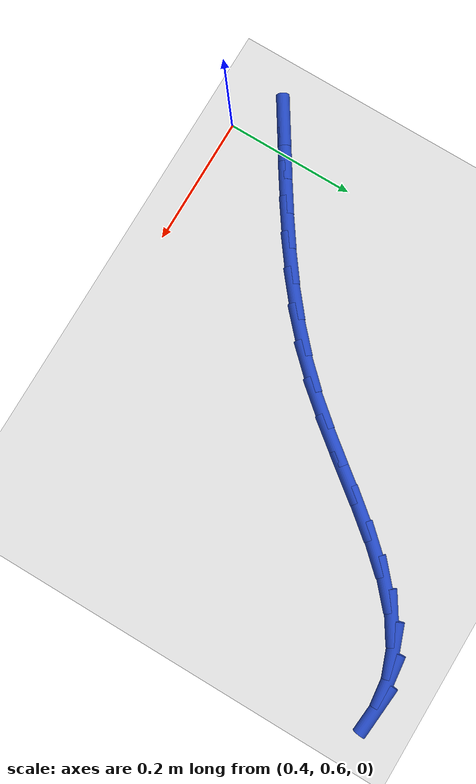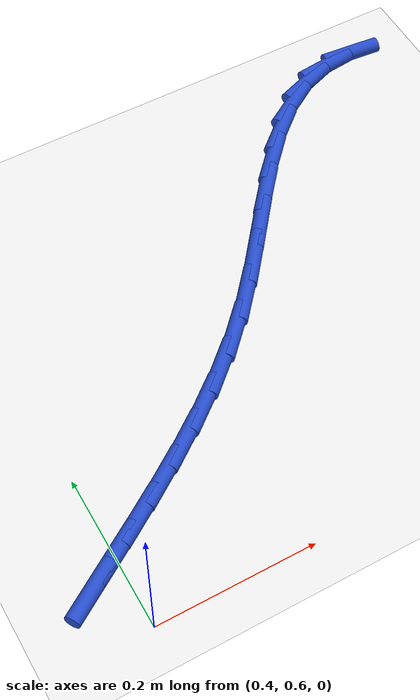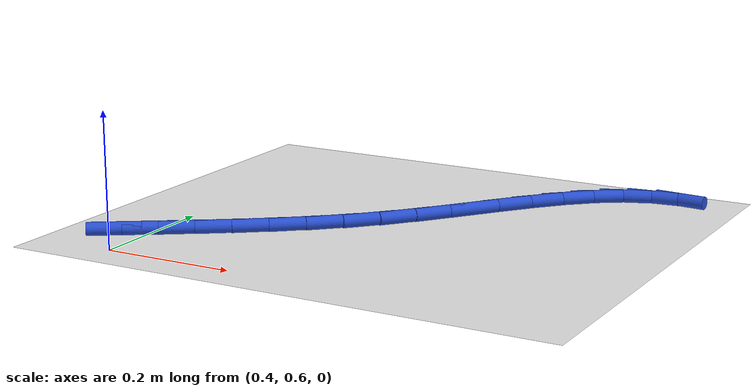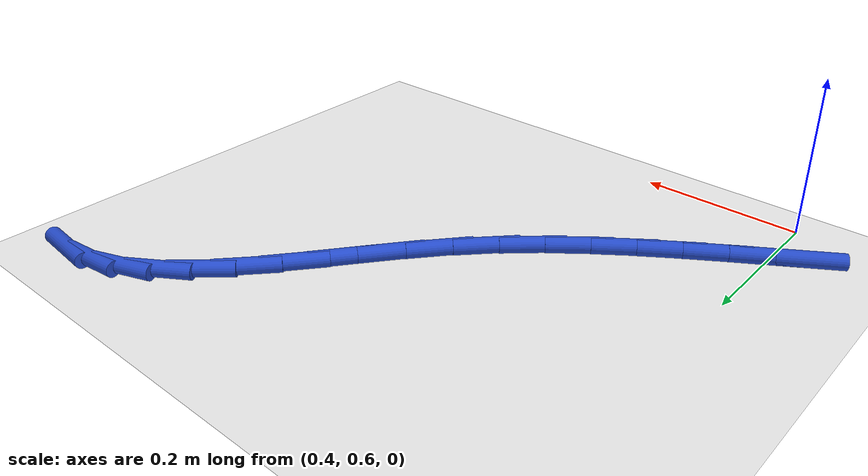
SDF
<sdf version="1.6">
 <world name="default">
  <model name="ground_plane">
   <static>1</static>
   <link name="link">
    <collision name="collision">
     <geometry><plane><normal>0 0 1</normal><size>100 100</size></plane></geometry>
     <surface><friction><ode><mu>100</mu><mu2>50</mu2></ode></friction></surface>
    </collision>
    <visual name="visual">
     <cast_shadows>0</cast_shadows>
     <geometry><plane><normal>0 0 1</normal><size>100 100</size></plane></geometry>
     <material>
      <script><uri>file://media/materials/scripts/gazebo.material</uri><name>Gazebo/WhiteGlow</name></script>
     </material>
    </visual>
   </link>
  </model>
  <model name="line">
   <link name="link_16">
    <pose>0.3589165409963174 0.664460746785337 0.01 0 1.57 0.5716758180571649</pose>
    <collision name="collision">
     <geometry><cylinder><radius>0.01</radius><length>0.08</length></cylinder></geometry>
    </collision>
    <visual name="visual">
     <material>
      <script><name>Gazebo/Blue</name><uri>file://media/materials/scripts/gazebo.material</uri></script>
     </material>
     <geometry><cylinder><radius>0.01</radius><length>0.08</length></cylinder></geometry>
    </visual>
   </link>
   <link name="link_17">
    <pose>0.40209640465131335 0.6922398820119394 0.01 0 1.57 0.5730004482977421</pose>
    <collision name="collision">
     <geometry><cylinder><radius>0.01</radius><length>0.08</length></cylinder></geometry>
    </collision>
    <visual name="visual">
     <material>
      <script><name>Gazebo/Blue</name><uri>file://media/materials/scripts/gazebo.material</uri></script>
     </material>
     <geometry><cylinder><radius>0.01</radius><length>0.08</length></cylinder></geometry>
    </visual>
   </link>
   <link name="link_18">
    <pose>0.44575271321680315 0.720407363441696 0.01 0 1.57 0.5859182505860807</pose>
    <collision name="collision">
     <geometry><cylinder><radius>0.01</radius><length>0.08</length></cylinder></geometry>
    </collision>
    <visual name="visual">
     <material>
      <script><name>Gazebo/Blue</name><uri>file://media/materials/scripts/gazebo.material</uri></script>
     </material>
     <geometry><cylinder><radius>0.01</radius><length>0.08</length></cylinder></geometry>
    </visual>
   </link>
   <link name="link_19">
    <pose>0.48947534050700087 0.7494243269945056 0.01 0 1.57 0.6101441137435232</pose>
    <collision name="collision">
     <geometry><cylinder><radius>0.01</radius><length>0.08</length></cylinder></geometry>
    </collision>
    <visual name="visual">
     <material>
      <script><name>Gazebo/Blue</name><uri>file://media/materials/scripts/gazebo.material</uri></script>
     </material>
     <geometry><cylinder><radius>0.01</radius><length>0.08</length></cylinder></geometry>
    </visual>
   </link>
   <link name="link_20">
    <pose>0.5328541603361202 0.7797519085902667 0.01 0 1.57 0.6454602085534941</pose>
    <collision name="collision">
     <geometry><cylinder><radius>0.01</radius><length>0.08</length></cylinder></geometry>
    </collision>
    <visual name="visual">
     <material>
      <script><name>Gazebo/Blue</name><uri>file://media/materials/scripts/gazebo.material</uri></script>
     </material>
     <geometry><cylinder><radius>0.01</radius><length>0.08</length></cylinder></geometry>
    </visual>
   </link>
   <link name="link_21">
    <pose>0.5754790465183752 0.8118512441488782 0.01 0 1.57 0.6916205465917975</pose>
    <collision name="collision">
     <geometry><cylinder><radius>0.01</radius><length>0.08</length></cylinder></geometry>
    </collision>
    <visual name="visual">
     <material>
      <script><name>Gazebo/Blue</name><uri>file://media/materials/scripts/gazebo.material</uri></script>
     </material>
     <geometry><cylinder><radius>0.01</radius><length>0.08</length></cylinder></geometry>
    </visual>
   </link>
   <link name="link_22">
    <pose>0.6169398728679798 0.8461834695902388 0.01 0 1.57 0.7482253124991002</pose>
    <collision name="collision">
     <geometry><cylinder><radius>0.01</radius><length>0.08</length></cylinder></geometry>
    </collision>
    <visual name="visual">
     <material>
      <script><name>Gazebo/Blue</name><uri>file://media/materials/scripts/gazebo.material</uri></script>
     </material>
     <geometry><cylinder><radius>0.01</radius><length>0.08</length></cylinder></geometry>
    </visual>
   </link>
   <link name="link_23">
    <pose>0.6568265131991476 0.8832097208342471 0.01 0 1.57 0.8143756505685936</pose>
    <collision name="collision">
     <geometry><cylinder><radius>0.01</radius><length>0.08</length></cylinder></geometry>
    </collision>
    <visual name="visual">
     <material>
      <script><name>Gazebo/Blue</name><uri>file://media/materials/scripts/gazebo.material</uri></script>
     </material>
     <geometry><cylinder><radius>0.01</radius><length>0.08</length></cylinder></geometry>
    </visual>
   </link>
   <link name="link_24">
    <pose>0.6947340358396832 0.9233803866648422 0.01 0 1.57 0.8749886662335858</pose>
    <collision name="collision">
     <geometry><cylinder><radius>0.01</radius><length>0.08</length></cylinder></geometry>
    </collision>
    <visual name="visual">
     <material>
      <script><name>Gazebo/Blue</name><uri>file://media/materials/scripts/gazebo.material</uri></script>
     </material>
     <geometry><cylinder><radius>0.01</radius><length>0.08</length></cylinder></geometry>
    </visual>
   </link>
   <link name="link_25">
    <pose>0.7306340394677682 0.9663668372345577 0.01 0 1.57 0.9079968809394678</pose>
    <collision name="collision">
     <geometry><cylinder><radius>0.01</radius><length>0.08</length></cylinder></geometry>
    </collision>
    <visual name="visual">
     <material>
      <script><name>Gazebo/Blue</name><uri>file://media/materials/scripts/gazebo.material</uri></script>
     </material>
     <geometry><cylinder><radius>0.01</radius><length>0.08</length></cylinder></geometry>
    </visual>
   </link>
   <link name="link_26">
    <pose>0.7651224515197365 1.010548744073922 0.01 0 1.57 0.9127183252124593</pose>
    <collision name="collision">
     <geometry><cylinder><radius>0.01</radius><length>0.08</length></cylinder></geometry>
    </collision>
    <visual name="visual">
     <material>
      <script><name>Gazebo/Blue</name><uri>file://media/materials/scripts/gazebo.material</uri></script>
     </material>
     <geometry><cylinder><radius>0.01</radius><length>0.08</length></cylinder></geometry>
    </visual>
   </link>
   <link name="link_27">
    <pose>0.7988539617561378 1.0541842030015918 0.01 0 1.57 0.88797338756524</pose>
    <collision name="collision">
     <geometry><cylinder><radius>0.01</radius><length>0.08</length></cylinder></geometry>
    </collision>
    <visual name="visual">
     <material>
      <script><name>Gazebo/Blue</name><uri>file://media/materials/scripts/gazebo.material</uri></script>
     </material>
     <geometry><cylinder><radius>0.01</radius><length>0.08</length></cylinder></geometry>
    </visual>
   </link>
   <link name="link_28">
    <pose>0.8324832599375223 1.095531309836222 0.01 0 1.57 0.8292181348549801</pose>
    <collision name="collision">
     <geometry><cylinder><radius>0.01</radius><length>0.08</length></cylinder></geometry>
    </collision>
    <visual name="visual">
     <material>
      <script><name>Gazebo/Blue</name><uri>file://media/materials/scripts/gazebo.material</uri></script>
     </material>
     <geometry><cylinder><radius>0.01</radius><length>0.08</length></cylinder></geometry>
    </visual>
   </link>
   <link name="link_29">
    <pose>0.8666650358244403 1.1328481603964704 0.01 0 1.57 0.7280273849411397</pose>
    <collision name="collision">
     <geometry><cylinder><radius>0.01</radius><length>0.08</length></cylinder></geometry>
    </collision>
    <visual name="visual">
     <material>
      <script><name>Gazebo/Blue</name><uri>file://media/materials/scripts/gazebo.material</uri></script>
     </material>
     <geometry><cylinder><radius>0.01</radius><length>0.08</length></cylinder></geometry>
    </visual>
   </link>
   <link name="link_30">
    <pose>0.9020539791774416 1.164392850500992 0.01 0 1.57 0.5729254050765923</pose>
    <collision name="collision">
     <geometry><cylinder><radius>0.01</radius><length>0.08</length></cylinder></geometry>
    </collision>
    <visual name="visual">
     <material>
      <script><name>Gazebo/Blue</name><uri>file://media/materials/scripts/gazebo.material</uri></script>
     </material>
     <geometry><cylinder><radius>0.01</radius><length>0.08</length></cylinder></geometry>
    </visual>
   </link>
   <link name="link_31">
    <pose>0.939304779757076 1.1884234759684429 0.01 0 1.57 0.3561416663735436</pose>
    <collision name="collision">
     <geometry><cylinder><radius>0.01</radius><length>0.08</length></cylinder></geometry>
    </collision>
    <visual name="visual">
     <material>
      <script><name>Gazebo/Blue</name><uri>file://media/materials/scripts/gazebo.material</uri></script>
     </material>
     <geometry><cylinder><radius>0.01</radius><length>0.08</length></cylinder></geometry>
    </visual>
   </link>
   <link name="link_32">
    <pose>0.9790656918972335 1.2032147038302263 0.01 0 1.57 0.11469485210553321</pose>
    <collision name="collision">
     <geometry><cylinder><radius>0.01</radius><length>0.08</length></cylinder></geometry>
    </collision>
    <visual name="visual">
     <material>
      <script><name>Gazebo/Blue</name><uri>file://media/materials/scripts/gazebo.material</uri></script>
     </material>
     <geometry><cylinder><radius>0.01</radius><length>0.08</length></cylinder></geometry>
    </visual>
   </link>
   <link name="link_33">
    <pose>1.0215694531640467 1.2081111560908306 0.01 0 1.57 -0.08791245542920716</pose>
    <collision name="collision">
     <geometry><cylinder><radius>0.01</radius><length>0.08</length></cylinder></geometry>
    </collision>
    <visual name="visual">
     <material>
      <script><name>Gazebo/Blue</name><uri>file://media/materials/scripts/gazebo.material</uri></script>
     </material>
     <geometry><cylinder><radius>0.01</radius><length>0.08</length></cylinder></geometry>
    </visual>
   </link>
  </model>
 </world>
</sdf>
